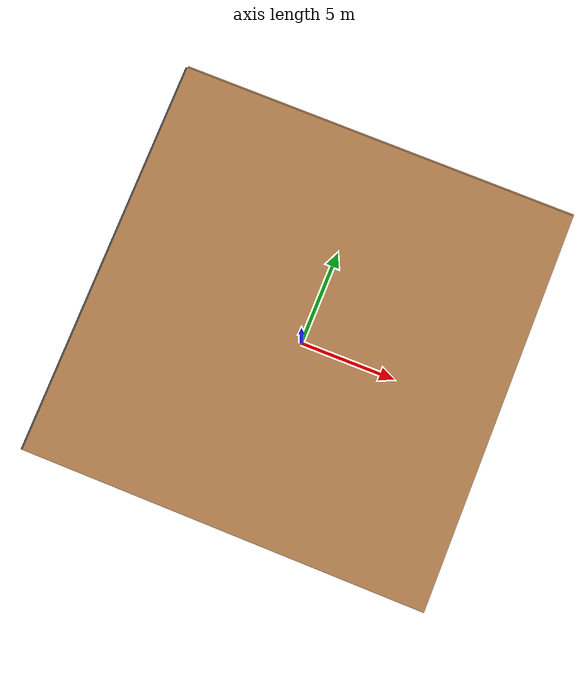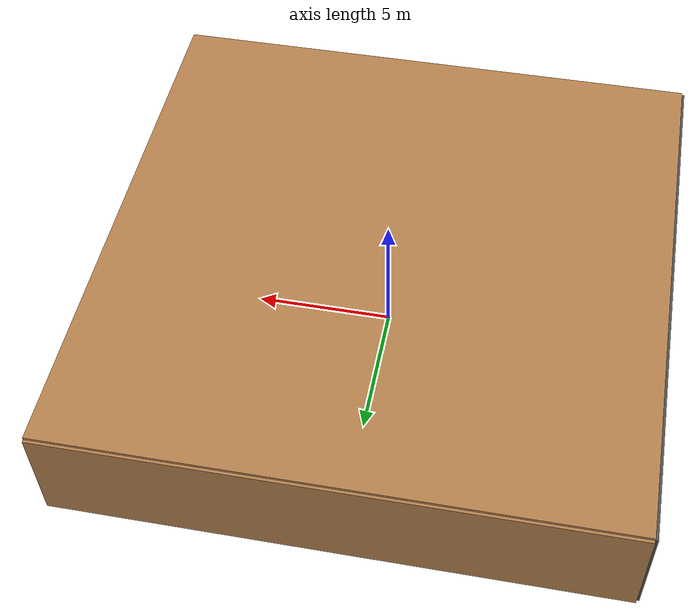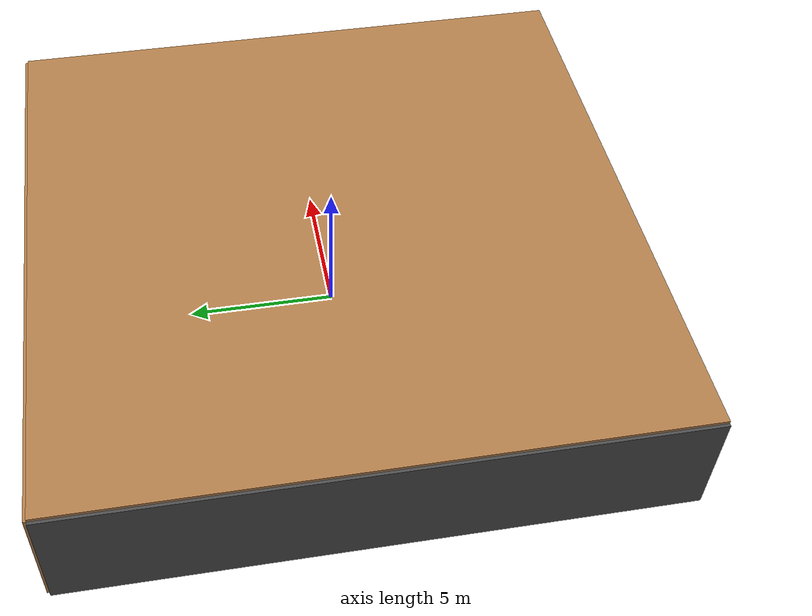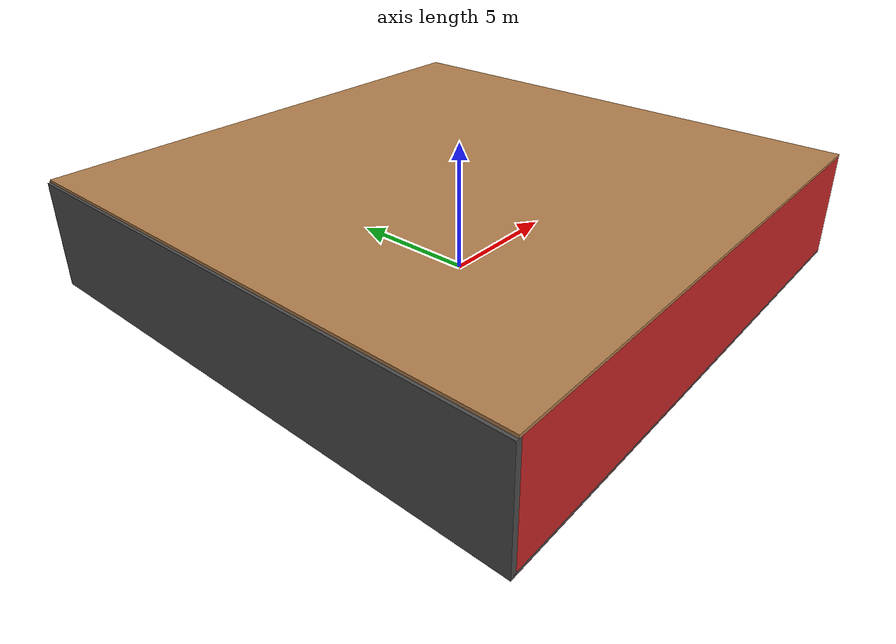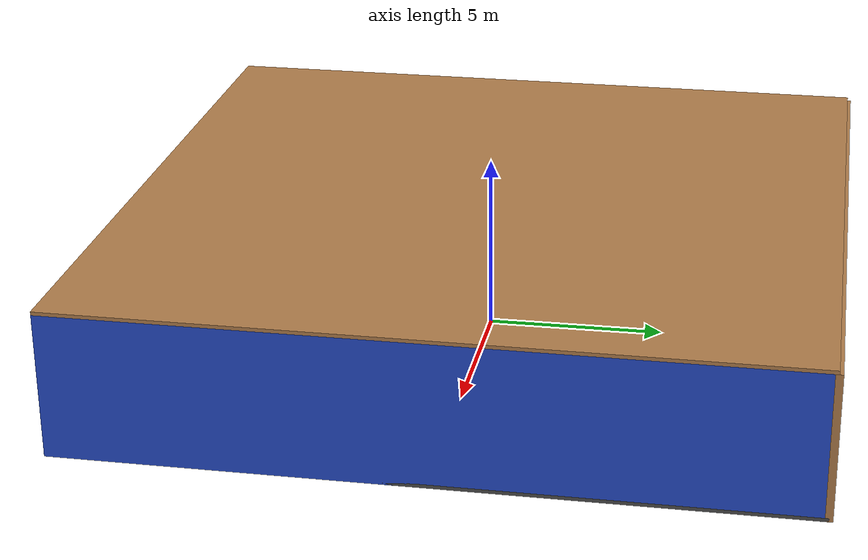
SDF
<sdf version="1.4">
 <world name="default">
  <physics type="ode">
   <max_step_size>0.001</max_step_size>
   <real_time_factor>1</real_time_factor>
   <real_time_update_rate>1000</real_time_update_rate>
   <gravity>0 0 -9.8</gravity>
  </physics>
  <scene><ambient>0.4 0.4 0.4 1</ambient><background>0.7 0.7 0.7 1</background><shadows>1</shadows></scene>
  <model name="Surrounding">
   <static>1</static>
   <link name="Ceiling">
    <collision name="Ceiling_Collision"><geometry><box><size>20 20 0.1</size></box></geometry></collision>
    <visual name="Ceiling_Visual">
     <geometry><box><size>20 20 0.1</size></box></geometry>
     <material>
      <script><uri>file://media/materials/scripts/gazebo.material</uri><name>Gazebo/Wood</name></script>
     </material>
    </visual>
    <pose>0 0 4.05 0 0 0</pose>
   </link>
   <link name="Wall_South">
    <collision name="Wall_South_Collision">
     <geometry><box><size>20 0 4</size></box></geometry>
     <pose>0 0 2 0 -0 0</pose>
    </collision>
    <visual name="Wall_South_Visual">
     <pose>0 0 2 0 -0 0</pose>
     <geometry><box><size>20 0 4</size></box></geometry>
     <material>
      <script><uri>file://media/materials/scripts/gazebo.material</uri><name>Gazebo/RedBright</name></script>
     </material>
    </visual>
    <velocity_decay><linear>0</linear><angular>0</angular></velocity_decay>
    <pose>0 -10 0 0 -0 0</pose>
   </link>
   <link name="Wall_East">
    <collision name="Wall_21_Collision">
     <geometry><box><size>20 0 4</size></box></geometry>
     <pose>0 0 2 0 -0 0</pose>
    </collision>
    <visual name="Wall_21_Visual">
     <pose>0 0 2 0 -0 0</pose>
     <geometry><box><size>20 0 4</size></box></geometry>
     <material>
      <script><uri>file://media/materials/scripts/gazebo.material</uri><name>Gazebo/BlueGlow</name></script>
     </material>
    </visual>
    <velocity_decay><linear>0</linear><angular>0</angular></velocity_decay>
    <pose>10 0 0 0 -0 1.5708</pose>
   </link>
   <link name="Wall_North">
    <collision name="Wall_22_Collision">
     <geometry><box><size>20 0.2 4</size></box></geometry>
     <pose>0 0 2 0 -0 0</pose>
    </collision>
    <visual name="Wall_22_Visual">
     <pose>0 0 2 0 -0 0</pose>
     <geometry><box><size>20 0.2 4</size></box></geometry>
     <material>
      <script><uri>file://media/materials/scripts/gazebo.material</uri><name>Gazebo/WoodFloor</name></script>
     </material>
    </visual>
    <velocity_decay><linear>0</linear><angular>0</angular></velocity_decay>
    <pose>0 10 0 0 -0 0</pose>
   </link>
   <link name="Wall_West">
    <collision name="Wall_23_Collision">
     <geometry><box><size>20 0.2 4</size></box></geometry>
     <pose>0 0 2 0 -0 0</pose>
    </collision>
    <visual name="Wall_23_Visual">
     <pose>0 0 2 0 -0 0</pose>
     <geometry><box><size>20 0.2 4</size></box></geometry>
     <material>
      <script><uri>file://media/materials/scripts/gazebo.material</uri><name>Gazebo/Road</name></script>
     </material>
    </visual>
    <velocity_decay><linear>0</linear><angular>0</angular></velocity_decay>
    <pose>-10 0 0 0 0 -1.5708</pose>
   </link>
   <link name="Ground_link">
    <collision name="collision">
     <pose>0 0 .05 0 -0 0</pose>
     <geometry><box><size>20 20 0.1</size></box></geometry>
    </collision>
    <visual name="visual">
     <pose>0 0 .05 0 -0 0</pose>
     <geometry><box><size>20 20 0.1</size></box></geometry>
     <material>
      <script><uri>file://media/materials/scripts/gazebo.material</uri><name>Gazebo/Road</name></script>
     </material>
    </visual>
   </link>
   <static>1</static>
  </model>
  <spherical_coordinates>
   <surface_model>EARTH_WGS84</surface_model>
   <latitude_deg>0</latitude_deg>
   <longitude_deg>0</longitude_deg>
   <elevation>0</elevation>
   <heading_deg>0</heading_deg>
  </spherical_coordinates>
  <light name="lightball_0" type="diffuse">
   <diffuse>0.8 0.8 0.8 1</diffuse>
   <specular>0.2 0.2 0.2 1</specular>
   <attenuation>
    <range>100</range>
    <constant>0.7</constant>
    <linear>0.01</linear>
    <quadratic>0.001</quadratic>
   </attenuation>
   <direction>-0.5 0.1 -0.9</direction>
   <pose>0.577537987577 0.154753458118 3.40821863531 0 0 0</pose>
  </light>
  <light name="lightball_1" type="diffuse">
   <diffuse>0.8 0.8 0.8 1</diffuse>
   <specular>0.2 0.2 0.2 1</specular>
   <attenuation>
    <range>100</range>
    <constant>0.7</constant>
    <linear>0.01</linear>
    <quadratic>0.001</quadratic>
   </attenuation>
   <direction>-0.5 0.1 -0.9</direction>
   <pose>-0.0360035136328 -4.66351637281 1.042368295 0 0 0</pose>
  </light>
  <light name="lightball_2" type="diffuse">
   <diffuse>0.8 0.8 0.8 1</diffuse>
   <specular>0.2 0.2 0.2 1</specular>
   <attenuation>
    <range>100</range>
    <constant>0.7</constant>
    <linear>0.01</linear>
    <quadratic>0.001</quadratic>
   </attenuation>
   <direction>-0.5 0.1 -0.9</direction>
   <pose>0.818060171392 -7.47575289064 2.6899080791 0 0 0</pose>
  </light>
  <light name="lightball_3" type="diffuse">
   <diffuse>0.8 0.8 0.8 1</diffuse>
   <specular>0.2 0.2 0.2 1</specular>
   <attenuation>
    <range>100</range>
    <constant>0.7</constant>
    <linear>0.01</linear>
    <quadratic>0.001</quadratic>
   </attenuation>
   <direction>-0.5 0.1 -0.9</direction>
   <pose>6.4995440516 8.24804465073 2.3258975927 0 0 0</pose>
  </light>
  <light name="lightball_4" type="diffuse">
   <diffuse>0.8 0.8 0.8 1</diffuse>
   <specular>0.2 0.2 0.2 1</specular>
   <attenuation>
    <range>100</range>
    <constant>0.7</constant>
    <linear>0.01</linear>
    <quadratic>0.001</quadratic>
   </attenuation>
   <direction>-0.5 0.1 -0.9</direction>
   <pose>3.7494345001 2.11623781661 1.43359063732 0 0 0</pose>
  </light>
  <light name="lightball_5" type="diffuse">
   <diffuse>0.8 0.8 0.8 1</diffuse>
   <specular>0.2 0.2 0.2 1</specular>
   <attenuation>
    <range>100</range>
    <constant>0.7</constant>
    <linear>0.01</linear>
    <quadratic>0.001</quadratic>
   </attenuation>
   <direction>-0.5 0.1 -0.9</direction>
   <pose>-2.82385169642 1.47309645944 2.6871046773 0 0 0</pose>
  </light>
  <light name="lightball_6" type="diffuse">
   <diffuse>0.8 0.8 0.8 1</diffuse>
   <specular>0.2 0.2 0.2 1</specular>
   <attenuation>
    <range>100</range>
    <constant>0.7</constant>
    <linear>0.01</linear>
    <quadratic>0.001</quadratic>
   </attenuation>
   <direction>-0.5 0.1 -0.9</direction>
   <pose>-7.01868280921 6.90167791829 1.38963360847 0 0 0</pose>
  </light>
  <light name="lightball_7" type="diffuse">
   <diffuse>0.8 0.8 0.8 1</diffuse>
   <specular>0.2 0.2 0.2 1</specular>
   <attenuation>
    <range>100</range>
    <constant>0.7</constant>
    <linear>0.01</linear>
    <quadratic>0.001</quadratic>
   </attenuation>
   <direction>-0.5 0.1 -0.9</direction>
   <pose>6.49323788491 7.67065660464 2.40098807967 0 0 0</pose>
  </light>
  <light name="lightball_8" type="diffuse">
   <diffuse>0.8 0.8 0.8 1</diffuse>
   <specular>0.2 0.2 0.2 1</specular>
   <attenuation>
    <range>100</range>
    <constant>0.7</constant>
    <linear>0.01</linear>
    <quadratic>0.001</quadratic>
   </attenuation>
   <direction>-0.5 0.1 -0.9</direction>
   <pose>7.82168018686 -5.609513052 2.16276517637 0 0 0</pose>
  </light>
  <light name="lightball_9" type="diffuse">
   <diffuse>0.8 0.8 0.8 1</diffuse>
   <specular>0.2 0.2 0.2 1</specular>
   <attenuation>
    <range>100</range>
    <constant>0.7</constant>
    <linear>0.01</linear>
    <quadratic>0.001</quadratic>
   </attenuation>
   <direction>-0.5 0.1 -0.9</direction>
   <pose>-2.15786646549 3.00149477708 3.51355101898 0 0 0</pose>
  </light>
  <light name="lightball_10" type="diffuse">
   <diffuse>0.8 0.8 0.8 1</diffuse>
   <specular>0.2 0.2 0.2 1</specular>
   <attenuation>
    <range>100</range>
    <constant>0.7</constant>
    <linear>0.01</linear>
    <quadratic>0.001</quadratic>
   </attenuation>
   <direction>-0.5 0.1 -0.9</direction>
   <pose>-1.94209699792 -0.351690292587 2.05619542349 0 0 0</pose>
  </light>
  <light name="lightball_11" type="diffuse">
   <diffuse>0.8 0.8 0.8 1</diffuse>
   <specular>0.2 0.2 0.2 1</specular>
   <attenuation>
    <range>100</range>
    <constant>0.7</constant>
    <linear>0.01</linear>
    <quadratic>0.001</quadratic>
   </attenuation>
   <direction>-0.5 0.1 -0.9</direction>
   <pose>-8.46051806151 6.01431363289 0.82889807006 0 0 0</pose>
  </light>
  <light name="lightball_12" type="diffuse">
   <diffuse>0.8 0.8 0.8 1</diffuse>
   <specular>0.2 0.2 0.2 1</specular>
   <attenuation>
    <range>100</range>
    <constant>0.7</constant>
    <linear>0.01</linear>
    <quadratic>0.001</quadratic>
   </attenuation>
   <direction>-0.5 0.1 -0.9</direction>
   <pose>-0.213633250409 1.34017807731 1.11423931948 0 0 0</pose>
  </light>
  <light name="lightball_13" type="diffuse">
   <diffuse>0.8 0.8 0.8 1</diffuse>
   <specular>0.2 0.2 0.2 1</specular>
   <attenuation>
    <range>100</range>
    <constant>0.7</constant>
    <linear>0.01</linear>
    <quadratic>0.001</quadratic>
   </attenuation>
   <direction>-0.5 0.1 -0.9</direction>
   <pose>-2.85334869428 -4.21271779822 1.87177140743 0 0 0</pose>
  </light>
  <include><uri>model://cabinet</uri><pose>0.856625317977 1.03469461694 0 0 0 0.542626376167</pose></include>
 </world>
</sdf>

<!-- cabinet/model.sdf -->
<sdf version="1.5">
  <model name="cabinet">
    <static>true</static>
    <link name="cabinet_bottom_plate">
      <inertial>
        <pose>0 0 -1 0 0 0</pose>
        <inertia>
          <ixx>2.050000</ixx>
          <ixy>0</ixy>
          <ixz>0</ixz>
          <iyy>2.050000</iyy>
          <iyz>0</iyz>
          <izz>2.050000</izz>
        </inertia>
        <mass>25.000000</mass>
      </inertial>
      <collision name="cabinet_bottom_plate_geom">
        <pose>0 0 0.010000 0 0 0</pose>
        <geometry>
          <box>
            <size>0.450000 0.450000 0.020000</size>
          </box>
        </geometry>
      </collision>
      <visual name="cabinet_bottom_plate_geom_visual">
        <pose>0 0 0.010000 0 0 0</pose>
        <geometry>
          <box>
            <size>0.450000 0.450000 0.020000</size>
          </box>
        </geometry>
        <material>
          <script>
            <uri>model://media/materials/scripts/gazebo.material</uri>
            <name>Gazebo/Wood</name>
          </script>
        </material>
      </visual>
      <collision name="cabinet_bottom_plate_geom_cabinet_back_plate">
        <pose>0.235000 0 0.510000 0 0 0</pose>
        <geometry>
          <box>
            <size>0.020000 0.450000 1.020000</size>
          </box>
        </geometry>
      </collision>
      <visual name="cabinet_bottom_plate_geom_cabinet_back_plate_visual">
        <pose>0.235000 0 0.510000 0 0 0</pose>
        <geometry>
          <box>
            <size>0.020000 0.450000 1.020000</size>
          </box>
        </geometry>
        <material>
          <script>
            <uri>model://media/materials/scripts/gazebo.material</uri>
            <name>Gazebo/Wood</name>
          </script>
        </material>
      </visual>
      <collision name="cabinet_bottom_plate_geom_cabinet_left_plate">
        <pose>0 0.235000 0.510000 0 0 0</pose>
        <geometry>
          <box>
            <size>0.450000 0.020000 1.020000</size>
          </box>
        </geometry>
      </collision>
      <visual name="cabinet_bottom_plate_geom_cabinet_left_plate_visual">
        <pose>0 0.235000 0.510000 0 0 0</pose>
        <geometry>
          <box>
            <size>0.450000 0.020000 1.020000</size>
          </box>
        </geometry>
        <material>
          <script>
            <uri>model://media/materials/scripts/gazebo.material</uri>
            <name>Gazebo/Wood</name>
          </script>
        </material>
      </visual>
      <collision name="cabinet_bottom_plate_geom_cabinet_middle_plate">
        <pose>0 0 0.510000 0 0 0</pose>
        <geometry>
          <box>
            <size>0.450000 0.450000 0.020000</size>
          </box>
        </geometry>
      </collision>
      <visual name="cabinet_bottom_plate_geom_cabinet_middle_plate_visual">
        <pose>0 0 0.510000 0 0 0</pose>
        <geometry>
          <box>
            <size>0.450000 0.450000 0.020000</size>
          </box>
        </geometry>
        <material>
          <script>
            <uri>model://media/materials/scripts/gazebo.material</uri>
            <name>Gazebo/Wood</name>
          </script>
        </material>
      </visual>
      <collision name="cabinet_bottom_plate_geom_cabinet_right_plate">
        <pose>0 -0.235000 0.510000 0 0 0</pose>
        <geometry>
          <box>
            <size>0.450000 0.020000 1.020000</size>
          </box>
        </geometry>
      </collision>
      <visual name="cabinet_bottom_plate_geom_cabinet_right_plate_visual">
        <pose>0 -0.235000 0.510000 0 0 0</pose>
        <geometry>
          <box>
            <size>0.450000 0.020000 1.020000</size>
          </box>
        </geometry>
        <material>
          <script>
            <uri>model://media/materials/scripts/gazebo.material</uri>
            <name>Gazebo/Wood</name>
          </script>
        </material>
      </visual>
      <collision name="cabinet_bottom_plate_geom_cabinet_top_plate">
        <pose>0 0 1.010000 0 0 0</pose>
        <geometry>
          <box>
            <size>0.450000 0.450000 0.020000</size>
          </box>
        </geometry>
      </collision>
      <visual name="cabinet_bottom_plate_geom_cabinet_top_plate_visual">
        <pose>0 0 1.010000 0 0 0</pose>
        <geometry>
          <box>
            <size>0.450000 0.450000 0.020000</size>
          </box>
        </geometry>
        <material>
          <script>
            <uri>model://media/materials/scripts/gazebo.material</uri>
            <name>Gazebo/Wood</name>
          </script>
        </material>
      </visual>
    </link>
  </model>
</sdf>
